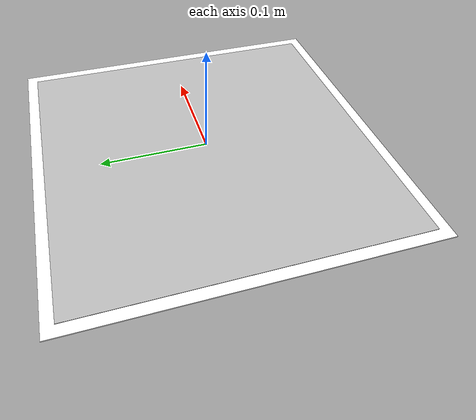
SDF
<?xml version="1.0" ?>
<sdf version="1.4">
  <model name="marker_3">
    <static>true</static>
    <link name="marker">
      <gravity>false</gravity>
      <visual name="tag">
        <geometry>
          <box>
            <size>0.30 0.30 0.002</size>
          </box>
        </geometry>
        <material>
          <script>
            <uri>model://leo_race_field/marker_3/material/scripts</uri>
            <uri>model://leo_race_field/marker_3/material/textures</uri>
            <name>marker_3</name>
          </script>
        </material>
      </visual>
      <visual name="support">
        <geometry>
          <box>
            <size>0.32 0.32 0.001</size>
          </box>
        </geometry>
        <material>
          <ambient>1 1 1 1</ambient>
          <diffuse>1 1 1 1</diffuse>
          <specular>1 1 1 1</specular>
        </material>
      </visual>

      <collision name="collision">
        <geometry>
          <box>
            <size>0.32 0.32 0.001</size>
          </box>
        </geometry>
      </collision>
    </link>
  </model>
</sdf>
